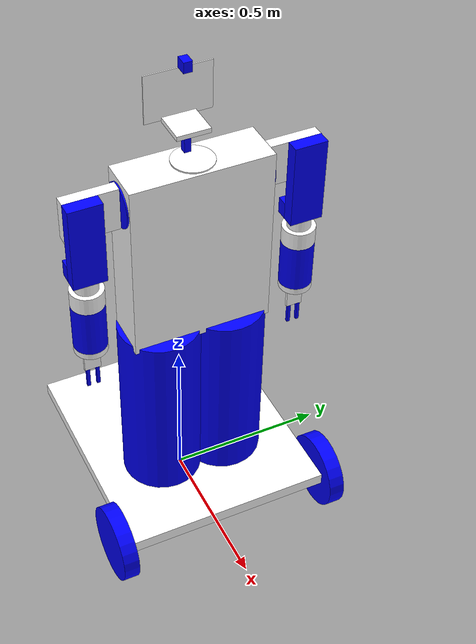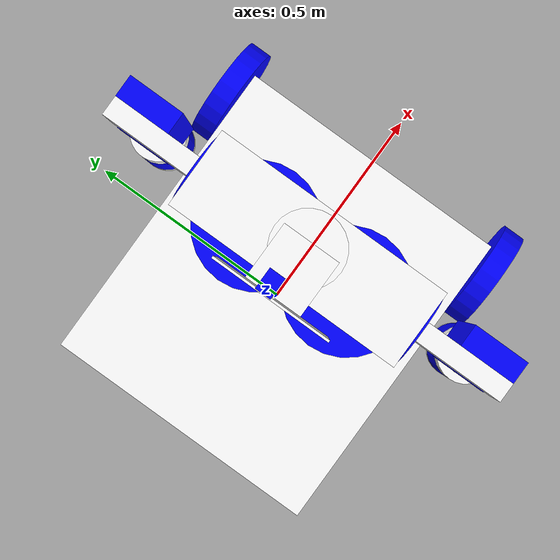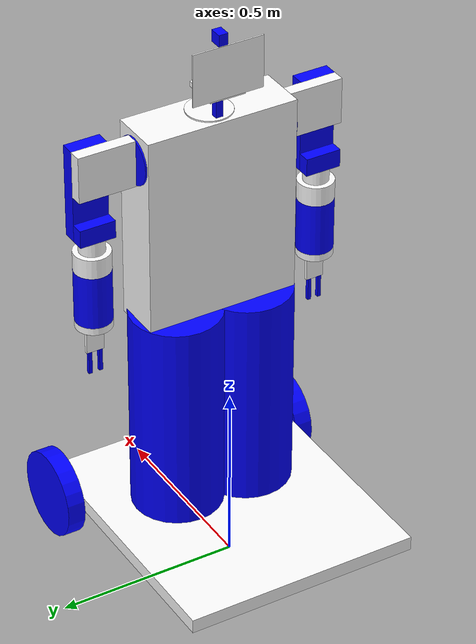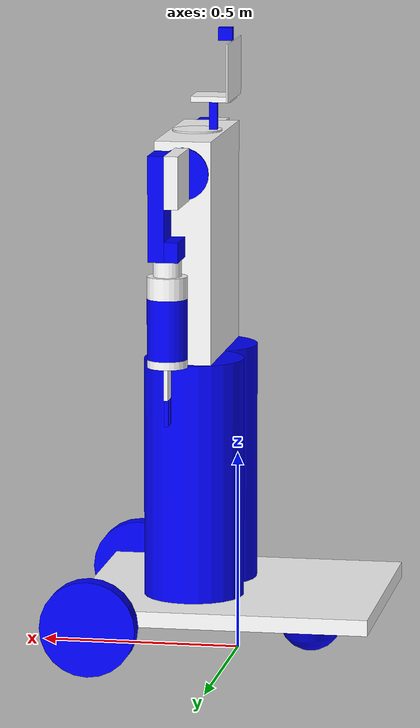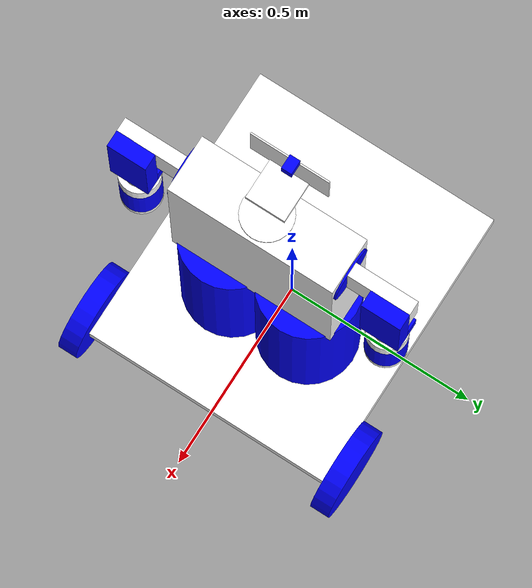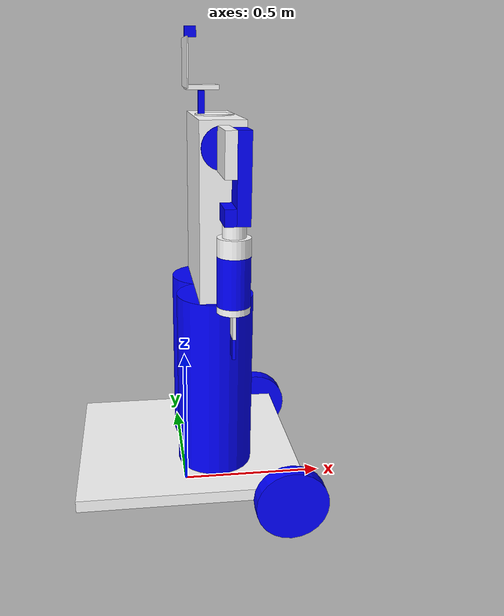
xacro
<?xml version='1.0'?>

<robot name="full_robot" xmlns:xacro="http://www.ros.org/wiki/xacro">

    <link name="world" />
    <link name="chassis">
        <visual>
            <origin rpy="0 0 0" xyz="0 0 0.14" />
            <geometry>
                <box size="0.75 0.66 0.04" />
            </geometry>
            <material name="white">
                <color rgba="1 1 1 1" />
            </material>
        </visual>
        <collision>
            <origin rpy="0 0 0" xyz="0 0 0.14" />
            <geometry>
                <box size="0.75 0.66 0.04" />
            </geometry>
            <material name="white" />
            <color rgba="1 1 1 1" />
        </collision>
        <inertial>
            <mass value="0.1" />
            <origin xyz="0 0 0" rpy="0 0 0" />
            <inertia ixx="0.03" iyy="0.03" izz="0.03" ixy="0.0" ixz="0.0" iyz="0.0" />
        </inertial>
    </link>
    <link name="RWheel">
        <visual>
            <origin rpy="0 1.5707 1.5707" xyz="0 0 0" />
            <geometry>
                <cylinder radius="0.12" length="0.05" />
            </geometry>
            <material name="blue">
                <color rgba="0 0 1 1" />
            </material>
        </visual>
        <collision>
            <origin rpy="0 1.5707 1.57" xyz="0 0 0" />
            <geometry>
                <cylinder radius="0.12" length="0.05" />
            </geometry>
            <material name="blue" />
            <color rgba="0 0 1 1" />
        </collision>
        <inertial>
            <mass value="0.1" />
            <origin xyz="0 0 0" rpy="0 0 0" />
            <inertia ixx="0.03" iyy="0.03" izz="0.03" ixy="0.0" ixz="0.0" iyz="0.0" />
        </inertial>
    </link>
    <link name="LWheel">
        <visual>
            <origin rpy="0 1.5707 1.5707" xyz="0 0 0" />
            <geometry>
                <cylinder radius="0.12" length="0.05" />
            </geometry>
            <material name="blue">
                <color rgba="0 0 1 1" />
            </material>
        </visual>
        <collision>
            <origin rpy="0 1.5707 1.57" xyz="0 0 0" />
            <geometry>
                <cylinder radius="0.12" length="0.05" />
            </geometry>
            <material name="blue" />
            <color rgba="0 0 1 1" />
        </collision>
        <inertial>
            <mass value="0.1" />
            <origin xyz="0 0 0" rpy="0 0 0" />
            <inertia ixx="0.03" iyy="0.03" izz="0.03" ixy="0.0" ixz="0.0" iyz="0.0" />
        </inertial>
    </link>
    <link name="caster">
        <visual>
            <origin rpy="0 0 0" xyz="0 0 0" />
            <geometry>
                <sphere radius="0.08" />
            </geometry>
            <material name="blue">
                <color rgba="0 0 1 1" />
            </material>
        </visual>
        <collision>
            <origin rpy="0 0 0" xyz="0 0 0" />
            <geometry>
                <sphere radius="0.08" />
            </geometry>
            <material name="blue" />
            <color rgba="0 0 1 1" />
        </collision>
        <inertial>
            <mass value="0.1" />
            <origin xyz="0 0 0" rpy="0 0 0" />
            <inertia ixx="0.03" iyy="0.03" izz="0.03" ixy="0.0" ixz="0.0" iyz="0.0" />
        </inertial>
    </link>
    <link name="leg1">
        <visual>
            <origin rpy="0 0 0" xyz="0 0 0" />
            <geometry>
                <cylinder radius="0.125" length="0.6" />
            </geometry>
            <material name="blue">
                <color rgba="0 0 1 1" />
            </material>
        </visual>
        <collision>
            <origin rpy="0 0 0" xyz="0 0 0" />
            <geometry>
                <cylinder radius="0.125" length="0.6" />
            </geometry>
            <material name="blue" />
            <color rgba="0 0 1 1" />
        </collision>
        <inertial>
            <mass value="0.1" />
            <origin xyz="0 0 0" rpy="0 0 0" />
            <inertia ixx="0.03" iyy="0.03" izz="0.03" ixy="0.0" ixz="0.0" iyz="0.0" />
        </inertial>
    </link>
    <link name="leg2">
        <visual>
            <origin rpy="0 0 0" xyz="0 0 0" />
            <geometry>
                <cylinder radius="0.125" length="0.6" />
            </geometry>
            <material name="blue">
                <color rgba="0 0 1 1" />
            </material>
        </visual>
        <collision>
            <origin rpy="0 0 0" xyz="0 0 0" />
            <geometry>
                <cylinder radius="0.125" length="0.6" />
            </geometry>
            <material name="blue" />
            <color rgba="0 0 1 1" />
        </collision>
        <inertial>
            <mass value="0.1" />
            <origin xyz="0 0 0" rpy="0 0 0" />
            <inertia ixx="0.03" iyy="0.03" izz="0.03" ixy="0.0" ixz="0.0" iyz="0.0" />
        </inertial>
    </link>
    <link name="body">
        <visual>
            <origin rpy="0 0 0" xyz="0 0 0" />
            <geometry>
                <box size="0.14 0.425 0.57" />
            </geometry>
            <material name="white">
                <color rgba="1 1 1 1" />
            </material>
        </visual>
        <collision>
            <origin rpy="0 0 0" xyz="0 0 0" />
            <geometry>
                <box size="0.7 0.217 0.27" />
            </geometry>
            <material name="white" />
            <color rgba="1 1 1 1" />
        </collision>
        <inertial>
            <mass value="0.1" />
            <origin xyz="0 0 0" rpy="0 0 0" />
            <inertia ixx="0.03" iyy="0.03" izz="0.03" ixy="0.0" ixz="0.0" iyz="0.0" />
        </inertial>
    </link>
    <link name="RMSH">
        <visual>
            <origin rpy="1.57 0 0" xyz="0 0 0" />
            <geometry>
                <cylinder radius="0.065" length="0.01" />
            </geometry>
            <material name="blue">
                <color rgba="0 0 1 1" />
            </material>
        </visual>
        <collision>
            <origin rpy="0 0 0" xyz="0 0 0" />
            <geometry>
                <cylinder radius="0.065" length="0.01" />
            </geometry>
            <material name="blue" />
            <color rgba="0 0 1 1" />
        </collision>
        <inertial>
            <mass value="0.1" />
            <origin xyz="0 0 0" rpy="0 0 0" />
            <inertia ixx="0.03" iyy="0.03" izz="0.03" ixy="0.0" ixz="0.0" iyz="0.0" />
        </inertial>
    </link>
    <link name="RMSHD">
        <visual>
            <origin rpy="0 0 0" xyz="0 0 0" />
            <geometry>
                <box size="0.035 0.16 0.13" />
            </geometry>
            <material name="white">
                <color rgba="1 1 1 1" />
            </material>
        </visual>
        <collision>
            <origin rpy="0 0 0" xyz="0 0 0" />
            <geometry>
                <box size="0.035 0.16 0.13" />
            </geometry>
            <material name="white" />
            <color rgba="1 1 1 1" />
        </collision>
        <inertial>
            <mass value="0.1" />
            <origin xyz="0 0 0" rpy="0 0 0" />
            <inertia ixx="0.03" iyy="0.03" izz="0.03" ixy="0.0" ixz="0.0" iyz="0.0" />
        </inertial>
    </link>
    <link name="RHSH">
        <visual>
            <origin rpy="0 0 0" xyz="0 0 0" />
            <geometry>
                <box size="0.04 0.10 0.26" />
            </geometry>
            <material name="blue">
                <color rgba="0 0 1 1" />
            </material>
        </visual>
        <collision>
            <origin rpy="0 0 0" xyz="0 0 0" />
            <geometry>
                <box size="0.04 0.10 0.26" />
            </geometry>
            <material name="blue" />
            <color rgba="0 0 1 1" />
        </collision>
        <inertial>
            <mass value="0.1" />
            <origin xyz="0 0 0" rpy="0 0 0" />
            <inertia ixx="0.03" iyy="0.03" izz="0.03" ixy="0.0" ixz="0.0" iyz="0.0" />
        </inertial>
    </link>
    <link name="RHSHD">
        <visual>
            <origin rpy="0 0 0" xyz="0 0 0" />
            <geometry>
                <box size="0.035 0.10 0.05" />
            </geometry>
            <material name="blue">
                <color rgba="0 0 1 1" />
            </material>
        </visual>
        <collision>
            <origin rpy="0 0 0" xyz="0 0 0" />
            <geometry>
                <box size="0.035 0.10 0.05" />
            </geometry>
            <material name="blue" />
            <color rgba="0 0 1 1" />
        </collision>
        <inertial>
            <mass value="0.1" />
            <origin xyz="0 0 0" rpy="0 0 0" />
            <inertia ixx="0.03" iyy="0.03" izz="0.03" ixy="0.0" ixz="0.0" iyz="0.0" />
        </inertial>
    </link>
    <link name="RE1">
        <visual>
            <origin rpy="0 0 0" xyz="0 0 0" />
            <geometry>
                <cylinder radius="0.035" length="0.04" />
            </geometry>
            <material name="white">
                <color rgba="1 1 1 1" />
            </material>
        </visual>
        <collision>
            <origin rpy="0 0 0" xyz="0 0 0" />
            <geometry>
                <cylinder radius="0.035" length="0.04" />
            </geometry>
            <material name="white" />
            <color rgba="1 1 1 1" />
        </collision>
        <inertial>
            <mass value="0.1" />
            <origin xyz="0 0 0" rpy="0 0 0" />
            <inertia ixx="0.03" iyy="0.03" izz="0.03" ixy="0.0" ixz="0.0" iyz="0.0" />
        </inertial>
    </link>
    <link name="RE2">
        <visual>
            <origin rpy="0 0 0" xyz="0 0 0" />
            <geometry>
                <cylinder radius="0.05" length="0.055" />
            </geometry>
            <material name="white">
                <color rgba="1 1 1 1" />
            </material>
        </visual>
        <collision>
            <origin rpy="0 0 0" xyz="0 0 0" />
            <geometry>
                <cylinder radius="0.05" length="0.055" />
            </geometry>
            <material name="white" />
            <color rgba="1 1 1 1" />
        </collision>
        <inertial>
            <mass value="0.1" />
            <origin xyz="0 0 0" rpy="0 0 0" />
            <inertia ixx="0.03" iyy="0.03" izz="0.03" ixy="0.0" ixz="0.0" iyz="0.0" />
        </inertial>
    </link>
    <link name="RW">
        <visual>
            <origin rpy="0 0 0" xyz="0 0 0" />
            <geometry>
                <cylinder radius="0.05" length="0.15" />
            </geometry>
            <material name="blue">
                <color rgba="0 0 1 1" />
            </material>
        </visual>
        <collision>
            <origin rpy="0 0 0" xyz="0 0 0" />
            <geometry>
                <cylinder radius="0.05" length="0.15" />
            </geometry>
            <material name="blue" />
            <color rgba="0 0 1 1" />
        </collision>
        <inertial>
            <mass value="0.1" />
            <origin xyz="0 0 0" rpy="0 0 0" />
            <inertia ixx="0.03" iyy="0.03" izz="0.03" ixy="0.0" ixz="0.0" iyz="0.0" />
        </inertial>
    </link>
    <link name="rgb">
        <visual>
            <origin rpy="0 0 0" xyz="0 0 0" />
            <geometry>
                <cylinder radius="0.05" length="0.02" />
            </geometry>
            <material name="white">
                <color rgba="1 1 1 1" />
            </material>
        </visual>
        <collision>
            <origin rpy="0 0 0" xyz="0 0 0" />
            <geometry>
                <cylinder radius="0.05" length="0.02" />
            </geometry>
            <material name="blue" />
            <color rgba="0 0 1 1" />
        </collision>
        <inertial>
            <mass value="0.1" />
            <origin xyz="0 0 0" rpy="0 0 0" />
            <inertia ixx="0.03" iyy="0.03" izz="0.03" ixy="0.0" ixz="0.0" iyz="0.0" />
        </inertial>
    </link>
    <link name="rgb1">
        <visual>
            <origin rpy="0 0 0" xyz="0 0 0" />
            <geometry>
                <box size="0.01 0.05 0.08"  />
            </geometry>
            <material name="white">
                <color rgba="1 1 1 1" />
            </material>
        </visual>
        <collision>
            <origin rpy="0 0 0" xyz="0 0 0" />
            <geometry>
                <box size="0.005 0.02 0.08"  />
            </geometry>
            <material name="blue" />
            <color rgba="0 0 1 1" />
        </collision>
        <inertial>
            <mass value="0.1" />
            <origin xyz="0 0 0" rpy="0 0 0" />
            <inertia ixx="0.03" iyy="0.03" izz="0.03" ixy="0.0" ixz="0.0" iyz="0.0" />
        </inertial>
    </link>

    <link name="rgf1">
        <visual>
            <origin rpy="0 0 0" xyz="0 0 -0.0325" />
            <geometry>
                <box size="0.01 0.01 0.065" />
            </geometry>
            <material name="blue">
                <color rgba="0 0 1 1" />
            </material>
        </visual>
        <collision>
            <origin rpy="0 0 0" xyz="0 0 -0.0325" />
            <geometry>
                <box size="0.01 0.01 0.065" />
            </geometry>
            <material name="blue" />
            <color rgba="0 0 1 1" />
        </collision>
        <inertial>
            <mass value="0.1" />
            <origin xyz="0 0 0" rpy="0 0 0" />
            <inertia ixx="0.03" iyy="0.03" izz="0.03" ixy="0.0" ixz="0.0" iyz="0.0" />
        </inertial>
    </link>

    <link name="rgf2">
        <visual>
            <origin rpy="0 0 0" xyz="0 0 -0.0325" />
            <geometry>
                <box size="0.01 0.01 0.065" />
            </geometry>
            <material name="blue">
                <color rgba="0 0 1 1" />
            </material>
        </visual>
        <collision>
            <origin rpy="0 0 0" xyz="0 0 -0.0325" />
            <geometry>
                <box size="0.01 0.01 0.065" />
            </geometry>
            <material name="blue" />
            <color rgba="0 0 1 1" />
        </collision>
        <inertial>
            <mass value="0.1" />
            <origin xyz="0 0 0" rpy="0 0 0" />
            <inertia ixx="0.03" iyy="0.03" izz="0.03" ixy="0.0" ixz="0.0" iyz="0.0" />
        </inertial>
    </link>

    <link name="LMSH">
        <visual>
            <origin rpy="1.57 0 0" xyz="0 0 0" />
            <geometry>
                <cylinder radius="0.065" length="0.01" />
            </geometry>
            <material name="blue">
                <color rgba="0 0 1 1" />
            </material>
        </visual>
        <collision>
            <origin rpy="0 0 0" xyz="0 0 0" />
            <geometry>
                <cylinder radius="0.065" length="0.01" />
            </geometry>
            <material name="blue" />
            <color rgba="0 0 1 1" />
        </collision>
        <inertial>
            <mass value="0.1" />
            <origin xyz="0 0 0" rpy="0 0 0" />
            <inertia ixx="0.03" iyy="0.03" izz="0.03" ixy="0.0" ixz="0.0" iyz="0.0" />
        </inertial>
    </link>
    <link name="LMSHD">
        <visual>
            <origin rpy="0 0 0" xyz="0 0 0" />
            <geometry>
                <box size="0.035 0.16 0.13" />
            </geometry>
            <material name="white">
                <color rgba="1 1 1 1" />
            </material>
        </visual>
        <collision>
            <origin rpy="0 0 0" xyz="0 0 0" />
            <geometry>
                <box size="0.035 0.16 0.13" />
            </geometry>
            <material name="white" />
            <color rgba="1 1 1 1" />
        </collision>
        <inertial>
            <mass value="0.1" />
            <origin xyz="0 0 0" rpy="0 0 0" />
            <inertia ixx="0.03" iyy="0.03" izz="0.03" ixy="0.0" ixz="0.0" iyz="0.0" />
        </inertial>
    </link>
    <link name="LHSH">
        <visual>
            <origin rpy="0 0 0" xyz="0 0 0" />
            <geometry>
                <box size="0.04 0.10 0.26" />
            </geometry>
            <material name="blue">
                <color rgba="0 0 1 1" />
            </material>
        </visual>
        <collision>
            <origin rpy="0 0 0" xyz="0 0 0" />
            <geometry>
                <box size="0.04 0.10 0.26" />
            </geometry>
            <material name="blue" />
            <color rgba="0 0 1 1" />
        </collision>
        <inertial>
            <mass value="0.1" />
            <origin xyz="0 0 0" rpy="0 0 0" />
            <inertia ixx="0.03" iyy="0.03" izz="0.03" ixy="0.0" ixz="0.0" iyz="0.0" />
        </inertial>
    </link>
    <link name="LHSHD">
        <visual>
            <origin rpy="0 0 0" xyz="0 0 0" />
            <geometry>
                <box size="0.035 0.10 0.05" />
            </geometry>
            <material name="blue">
                <color rgba="0 0 1 1" />
            </material>
        </visual>
        <collision>
            <origin rpy="0 0 0" xyz="0 0 0" />
            <geometry>
                <box size="0.035 0.10 0.05" />
            </geometry>
            <material name="blue" />
            <color rgba="0 0 1 1" />
        </collision>
        <inertial>
            <mass value="0.1" />
            <origin xyz="0 0 0" rpy="0 0 0" />
            <inertia ixx="0.03" iyy="0.03" izz="0.03" ixy="0.0" ixz="0.0" iyz="0.0" />
        </inertial>
    </link>
    <link name="LE1">
        <visual>
            <origin rpy="0 0 0" xyz="0 0 0" />
            <geometry>
                <cylinder radius="0.035" length="0.04" />
            </geometry>
            <material name="white">
                <color rgba="1 1 1 1" />
            </material>
        </visual>
        <collision>
            <origin rpy="0 0 0" xyz="0 0 0" />
            <geometry>
                <cylinder radius="0.035" length="0.04" />
            </geometry>
            <material name="white" />
            <color rgba="1 1 1 1" />
        </collision>
        <inertial>
            <mass value="0.1" />
            <origin xyz="0 0 0" rpy="0 0 0" />
            <inertia ixx="0.03" iyy="0.03" izz="0.03" ixy="0.0" ixz="0.0" iyz="0.0" />
        </inertial>
    </link>
    <link name="LE2">
        <visual>
            <origin rpy="0 0 0" xyz="0 0 0" />
            <geometry>
                <cylinder radius="0.05" length="0.055" />
            </geometry>
            <material name="white">
                <color rgba="1 1 1 1" />
            </material>
        </visual>
        <collision>
            <origin rpy="0 0 0" xyz="0 0 0" />
            <geometry>
                <cylinder radius="0.05" length="0.055" />
            </geometry>
            <material name="white" />
            <color rgba="1 1 1 1" />
        </collision>
        <inertial>
            <mass value="0.1" />
            <origin xyz="0 0 0" rpy="0 0 0" />
            <inertia ixx="0.03" iyy="0.03" izz="0.03" ixy="0.0" ixz="0.0" iyz="0.0" />
        </inertial>
    </link>
    <link name="LW">
        <visual>
            <origin rpy="0 0 0" xyz="0 0 0" />
            <geometry>
                <cylinder radius="0.05" length="0.15" />
            </geometry>
            <material name="blue">
                <color rgba="0 0 1 1" />
            </material>
        </visual>
        <collision>
            <origin rpy="0 0 0" xyz="0 0 0" />
            <geometry>
                <cylinder radius="0.05" length="0.15" />
            </geometry>
            <material name="blue" />
            <color rgba="0 0 1 1" />
        </collision>
        <inertial>
            <mass value="0.1" />
            <origin xyz="0 0 0" rpy="0 0 0" />
            <inertia ixx="0.03" iyy="0.03" izz="0.03" ixy="0.0" ixz="0.0" iyz="0.0" />
        </inertial>
    </link>

    <link name="lgb">
        <visual>
            <origin rpy="0 0 0" xyz="0 0 0" />
            <geometry>
                <cylinder radius="0.05" length="0.02" />
            </geometry>
            <material name="white">
                <color rgba="1 1 1 1" />
            </material>
        </visual>
        <collision>
            <origin rpy="0 0 0" xyz="0 0 0" />
            <geometry>
                <cylinder radius="0.05" length="0.02" />
            </geometry>
            <material name="white" />
            <color rgba="1 1 1 1" />
        </collision>
        <inertial>
            <mass value="0.1" />
            <origin xyz="0 0 0" rpy="0 0 0" />
            <inertia ixx="0.03" iyy="0.03" izz="0.03" ixy="0.0" ixz="0.0" iyz="0.0" />
        </inertial>
    </link>
    <link name="lgb1">
        <visual>
            <origin rpy="0 0 0" xyz="0 0 0" />
            <geometry>
                <box size="0.01 0.05 0.08"  />
            </geometry>
            <material name="white">
                <color rgba="1 1 1 1" />
            </material>
        </visual>
        <collision>
            <origin rpy="0 0 0" xyz="0 0 0" />
            <geometry>
                <box size="0.005 0.02 0.08"  />
            </geometry>
            <material name="blue" />
            <color rgba="0 0 1 1" />
        </collision>
        <inertial>
            <mass value="0.1" />
            <origin xyz="0 0 0" rpy="0 0 0" />
            <inertia ixx="0.03" iyy="0.03" izz="0.03" ixy="0.0" ixz="0.0" iyz="0.0" />
        </inertial>
    </link>

    <link name="lgf1">
        <visual>
            <origin rpy="0 0 0" xyz="0 0 -0.0325" />
            <geometry>
                <box size="0.01 0.01 0.065" />
            </geometry>
            <material name="blue">
                <color rgba="0 0 1 1" />
            </material>
        </visual>
        <collision>
            <origin rpy="0 0 0" xyz="0 0 -0.0325" />
            <geometry>
                <box size="0.01 0.01 0.065" />
            </geometry>
            <material name="blue" />
            <color rgba="0 0 1 1" />
        </collision>
        <inertial>
            <mass value="0.1" />
            <origin xyz="0 0 0" rpy="0 0 0" />
            <inertia ixx="0.03" iyy="0.03" izz="0.03" ixy="0.0" ixz="0.0" iyz="0.0" />
        </inertial>
    </link>

    <link name="lgf2">
        <visual>
            <origin rpy="0 0 0" xyz="0 0 -0.0325" />
            <geometry>
                <box size="0.01 0.01 0.065" />
            </geometry>
            <material name="blue">
                <color rgba="0 0 1 1" />
            </material>
        </visual>
        <collision>
            <origin rpy="0 0 0" xyz="0 0 -0.0325" />
            <geometry>
                <box size="0.01 0.01 0.065" />
            </geometry>
            <material name="blue" />
            <color rgba="0 0 1 1" />
        </collision>
        <inertial>
            <mass value="0.1" />
            <origin xyz="0 0 0" rpy="0 0 0" />
            <inertia ixx="0.03" iyy="0.03" izz="0.03" ixy="0.0" ixz="0.0" iyz="0.0" />
        </inertial>
    </link>

    <link name="neckbase">
        <visual>
            <origin rpy="0 0 0" xyz="0 0 0.007" />
            <geometry>
                <cylinder radius="0.0625" length="0.014" />
            </geometry>
            <material name="white">
                <color rgba="1 1 1 1" />
            </material>
        </visual>
        <collision>
            <origin rpy="0 0 0" xyz="0 0 0.007" />
            <geometry>
                <cylinder radius="0.0625" length="0.014" />
            </geometry>
            <material name="white" />
            <color rgba="1 1 1 1" />
        </collision>
        <inertial>
            <mass value="0.129" />
            <inertia ixx="0.000127" ixy="0.0" ixz="0.0" iyy="0.000127" iyz="0.0" izz="0.000252" />
            <origin xyz="0 0 0" rpy="0 0 0" />
        </inertial>
    </link>

    <link name="neck1">
        <visual>
            <origin rpy="0 0 0" xyz="0 0 0" />
            <geometry>
                <box size="0.02 0.02 0.076242" />
            </geometry>
            <material name="blue">
                <color rgba="0 0 1 1" />
            </material>
        </visual>
        <collision>
            <origin rpy="0 0 0" xyz="0 0 0" />
            <geometry>
                <box size="0.02 0.02 0.076242" />
            </geometry>
            <material name="blue">
                <color rgba="0 0 1 1" />
            </material>
        </collision>
        <inertial>
            <mass value="0.16" />
            <inertia ixx="0.000232" ixy="0.0" ixz="0.0" iyy="0.000232" iyz="0.0" izz="0.0000107" />
            <origin xyz="0 0 0" rpy="0 0 0" />
        </inertial>
    </link>
    <link name="neck2">
        <visual>
            <origin rpy="0 0 0" xyz="0 0 0.00425" />
            <geometry>
                <box size="0.1 0.1 0.014" />
            </geometry>
            <material name="white">
                <color rgba="1 1 1 1" />
            </material>
        </visual>
        <collision>
            <origin rpy="0 0 0" xyz="0 0 0.00425" />
            <geometry>
                <box size="0.1 0.1 0.014" />
            </geometry>
            <material name="white">
                <color rgba="1 1 1 1" />
            </material>
        </collision>
        <!--hna da al mass bta3 al lcd m2sto4 we m4 hgrb beh awl mra assume=0.3 kg , htfr2 fl inertia kda with lcd-->
        <inertial>
            <mass value="0.3" />
            <inertia ixx="0.000274" ixy="0.0" ixz="0.0" iyy="0.000274" iyz="0.0" izz="0.0005" />
            <origin xyz="0 0 0" rpy="0 0 0" />
        </inertial>
    </link>
    <link name="screen">
        <visual>
            <origin rpy="0 0 0" xyz="0 0 0.073" />
            <geometry>
                <box size="0.004 0.2 0.146" />
            </geometry>
            <material name="white">
                <color rgba="1 1 1 1" />
            </material>
        </visual>
        <collision>
            <origin rpy="0 0 0" xyz="0 0 0.073" />
            <geometry>
                <box size="0.004 0.2 0.146" />
            </geometry>
            <material name="white">
                <color rgba="1 1 1 1" />
            </material>
        </collision>
        <inertial>
            <mass value="0.1" />
            <origin xyz="0 0 0" rpy="0 0 0" />
            <inertia ixx="0" iyy="0" izz="0" ixy="0.0" ixz="0.0" iyz="0.0" />
        </inertial>
    </link>

    <link name="camera">
        <visual>
            <origin rpy="0 0 0" xyz="0.0175 0 0" />
            <geometry>
                <box size="0.035 0.026 0.032" />
            </geometry>
            <material name="blue">
                <color rgba="0 0 1 1" />
            </material>
        </visual>
        <collision>
            <origin rpy="0 0 0" xyz="0 0 0" />
            <geometry>
                <box size="0.035 0.026 0.032" />
            </geometry>
            <material name="blue">
                <color rgba="0 0 1 1" />
            </material>
        </collision>
    </link>

    <joint name="world_joint" type="fixed">
        <parent link="world" />
        <child link="chassis" />
        <origin xyz="0.0 0.0 0.0" rpy="0.0 0.0 0.0" />
    </joint>

    <joint name="chassis_RWheel" type="continuous">
        <origin xyz="0.315 0.355 0.12" rpy="0 0 0" />
        <parent link="chassis" />
        <child link="RWheel" />
        <limit effort="30" velocity="1.0" lower="-1.57" upper="1.57" />
        <axis xyz="0 -1 0" />
    </joint>
    <joint name="chassis_LWheel" type="continuous">
        <origin xyz="0.315 -0.355 0.12" rpy="0 0 0" />
        <parent link="chassis" />
        <child link="LWheel" />
        <limit effort="30" velocity="1.0" lower="-1.57" upper="1.57" />
        <axis xyz="0 -1 0" />
    </joint>
    <joint name="chassis_caster" type="continuous">
        <origin xyz="-0.1875 0 0.08" rpy="0 0 0" />
        <parent link="chassis" />
        <child link="caster" />
        <limit effort="30" velocity="1.0" lower="-1.57" upper="1.57" />
        <axis xyz="1 1 1" />
    </joint>
    <joint name="chassis_leg1" type="fixed">
        <origin xyz="0.09375 0.105 0.46" rpy="0 0 0" />
        <parent link="chassis" />
        <child link="leg1" />
        <limit effort="30" velocity="1.0" lower="-1.57" upper="1.57" />
        <axis xyz="0 0 1" />
    </joint>
    <joint name="chassis_leg2" type="fixed">
        <origin xyz="0.09375 -0.105 0.46" rpy="0 0 0" />
        <parent link="chassis" />
        <child link="leg2" />
        <limit effort="30" velocity="1.0" lower="-1.57" upper="1.57" />
        <axis xyz="0 0 1" />
    </joint>
    <joint name="leg_body" type="fixed">
        <origin xyz="0.01 -0.105 0.57" rpy="0 0 0" />
        <parent link="leg1" />
        <child link="body" />
        <limit effort="30" velocity="1.0" lower="-1.57" upper="1.57" />
        <axis xyz="0 0 1" />
    </joint>
    <joint name="body_RMSH" type="revolute">
        <origin xyz="0 0.2125 0.205" rpy="0 0 0" />
        <parent link="body" />
        <child link="RMSH" />
        <limit effort="30" velocity="1.0" lower="0" upper="0.2617" />
        <axis xyz="0 1 0" />
    </joint>
    <joint name="body_LMSH" type="revolute">
        <origin xyz="0 -0.2125 0.205" rpy="0 0 0" />
        <parent link="body" />
        <child link="LMSH" />
        <limit effort="30" velocity="1.0" lower="0" upper="0.2617" />
        <axis xyz="0 1 0" />
    </joint>
    <joint name="RMSH_RMSHD" type="fixed">
        <origin xyz="0 0.085 0" rpy="0 0 0" />
        <parent link="RMSH" />
        <child link="RMSHD" />
        <limit effort="30" velocity="1.0" lower="-1.57" upper="1.57" />
        <axis xyz="0 1 0" />
    </joint>
    <joint name="LMSH_LMSHD" type="fixed">
        <origin xyz="0 -0.085 0" rpy="0 0 0" />
        <parent link="LMSH" />
        <child link="LMSHD" />
        <limit effort="30" velocity="1.0" lower="-1.57" upper="1.57" />
        <axis xyz="0 1 0" />
    </joint>
    <joint name="RMSHD_RHSH" type="revolute">
        <origin xyz="0.037 0.03 -0.065" rpy="0 0 0" />
        <parent link="RMSHD" />
        <child link="RHSH" />
        <limit effort="30" velocity="1.0" lower="-0.3489" upper="0.3489" />
        <axis xyz="1 0 0" />
    </joint>
    <joint name="LMSHD_LHSH" type="revolute">
        <origin xyz="0.037 -0.03 -0.065" rpy="0 0 0" />
        <parent link="LMSHD" />
        <child link="LHSH" />
        <limit effort="30" velocity="1.0" lower="-0.3489" upper="0.3489" />
        <axis xyz="1 0 0" />
    </joint>
    <joint name="RHSH_RHSHD" type="fixed">
        <origin xyz="-0.037 0 -0.105" rpy="0 0 0" />
        <parent link="RHSH" />
        <child link="RHSHD" />
        <limit effort="30" velocity="1.0" lower="-1.57" upper="1.57" />
        <axis xyz="1 0 0" />
    </joint>
    <joint name="LHSH_LHSHD" type="fixed">
        <origin xyz="-0.037 0 -0.105" rpy="0 0 0" />
        <parent link="LHSH" />
        <child link="LHSHD" />
        <limit effort="30" velocity="1.0" lower="-1.57" upper="1.57" />
        <axis xyz="1 0 0" />
    </joint>
    <joint name="RHSHD_RE1" type="revolute">
        <origin xyz="0.0175 0 -0.045" rpy="0 0 0" />
        <parent link="RHSHD" />
        <child link="RE1" />
        <limit effort="30" velocity="1.0" lower="0" upper="0.8726" />
        <axis xyz="0 1 0" />
    </joint>
    <joint name="LHSHD_LE1" type="revolute">
        <origin xyz="0.0175 0 -0.045" rpy="0 0 0" />
        <parent link="LHSHD" />
        <child link="LE1" />
        <limit effort="30" velocity="1.0" lower="0" upper="0.8726" />
        <axis xyz="0 1 0" />
    </joint>
    <joint name="RE1_RE2" type="fixed">
        <origin xyz="0 0 -0.0475" rpy="0 0 0" />
        <parent link="RE1" />
        <child link="RE2" />
        <limit effort="30" velocity="1.0" lower="-1.57" upper="1.57" />
        <axis xyz="0 1 0" />
    </joint>
    <joint name="LE1_LE2" type="fixed">
        <origin xyz="0 0 -0.0475" rpy="0 0 0" />
        <parent link="LE1" />
        <child link="LE2" />
        <limit effort="30" velocity="1.0" lower="-1.57" upper="1.57" />
        <axis xyz="0 1 0" />
    </joint>
    <joint name="RE2_RW" type="revolute">
        <origin xyz="0 0 -0.1025" rpy="0 0 0" />
        <parent link="RE2" />
        <child link="RW" />
        <limit effort="30" velocity="1.0" lower="-1.1344" upper="0" />
        <axis xyz="0 0 1" />
    </joint>
    <joint name="LE2_LW" type="revolute">
        <origin xyz="0 0 -0.1025" rpy="0 0 0" />
        <parent link="LE2" />
        <child link="LW" />
        <limit effort="30" velocity="1.0" lower="0" upper="1.1344" />
        <axis xyz="0 0 1" />
    </joint>
    <joint name="RW_rgb" type="fixed">
        <origin xyz="0 0 -0.085001" rpy="0 0 0" />
        <parent link="RW" />
        <child link="rgb" />
        <limit effort="30" velocity="1.0" lower="-1.57" upper="1.57" />
        <axis xyz="0 0 1" />
    </joint>
    <joint name="rgb_rgb1" type="fixed">
        <origin xyz="0 0 -0.05" rpy="0 0 0" />
        <parent link="rgb" />
        <child link="rgb1" />
        <limit effort="30" velocity="1.0" lower="-1.57" upper="1.57" />
        <axis xyz="1 0 0" />
    </joint>
    <joint name="rgb1_rgf1" type="revolute">
        <origin xyz="0 0.015 -0.04" rpy="0 0 0" />
        <parent link="rgb1" />
        <child link="rgf1" />
        <limit effort="30" velocity="1.0" lower="0" upper="1.57" />
        <axis xyz="0 1 0" />
    </joint>
    <joint name="rgb1_rgf2" type="revolute">
        <origin xyz="0 -0.015 -0.04" rpy="0 0 0" />
        <parent link="rgb1" />
        <child link="rgf2" />
        <limit effort="30" velocity="1.0" lower="0" upper="1.57" />
        <axis xyz="0 1 0" />
    </joint>
    <joint name="LW_lgb" type="fixed">
        <origin xyz="0 0 -0.085001" rpy="0 0 0" />
        <parent link="LW" />
        <child link="lgb" />
        <limit effort="30" velocity="1.0" lower="-1.57" upper="1.57" />
        <axis xyz="0 0 1" />
    </joint>
    <joint name="lgb_lgb1" type="fixed">
        <origin xyz="0 0 -0.05" rpy="0 0 0" />
        <parent link="lgb" />
        <child link="lgb1" />
        <limit effort="30" velocity="1.0" lower="-1.57" upper="1.57" />
        <axis xyz="1 0 0" />
    </joint>
    <joint name="lgb1_lgf1" type="revolute">
        <origin xyz="0 -0.015 -0.04" rpy="0 0 0" />
        <parent link="lgb1" />
        <child link="lgf1" />
        <limit effort="30" velocity="1.0" lower="0" upper="1.57" />
        <axis xyz="0 1 0" />
    </joint>

    <joint name="lgb1_lgf2" type="revolute">
        <origin xyz="0 0.015 -0.04" rpy="0 0 0" />
        <parent link="lgb1" />
        <child link="lgf2" />
        <limit effort="30" velocity="1.0" lower="0" upper="1.57" />
        <axis xyz="0 1 0" />
    </joint>

    <joint name="body_neckbase" type="fixed">
        <origin xyz="0 0 0.275" rpy="0 0 0" />
        <parent link="body" />
        <child link="neckbase" />
        <limit effort="30" velocity="1.0" lower="-3" upper="3" />
        <axis xyz="0 1 0" />
    </joint>
    <joint name="neckbase_neck1" type="revolute">
        <origin xyz="-0.041342 0 0.045121" rpy="0 0 0" />
        <parent link="neckbase" />
        <child link="neck1" />
        <limit effort="30" velocity="1.0" lower="-1.57" upper="1.57" />
        <axis xyz="0 0 1" />
    </joint>
    <joint name="neck1_neck2" type="revolute">
        <origin xyz="0 0 0.045121" rpy="0 0 0" />
        <parent link="neck1" />
        <child link="neck2" />
        <limit effort="30" velocity="1.0" lower="-1.57" upper="1.57" />
        <axis xyz="0 1 0" />
    </joint>
    <joint name="neck2_screen" type="fixed">
        <origin xyz="-0.05 0 0.0021501" rpy="0 0 0" />
        <parent link="neck2" />
        <child link="screen" />
        <limit effort="30" velocity="1.0" lower="-1.57" upper="1.57" />
        <axis xyz="0 1 0" />
    </joint>
    <joint name="screen_camera" type="fixed">
        <origin xyz="0 0.013 0.162" rpy="0 0 0" />
        <parent link="screen" />
        <child link="camera" />
        <limit effort="30" velocity="1.0" lower="-1.57" upper="1.57" />
        <axis xyz="0 1 0" />
    </joint>

</robot>
